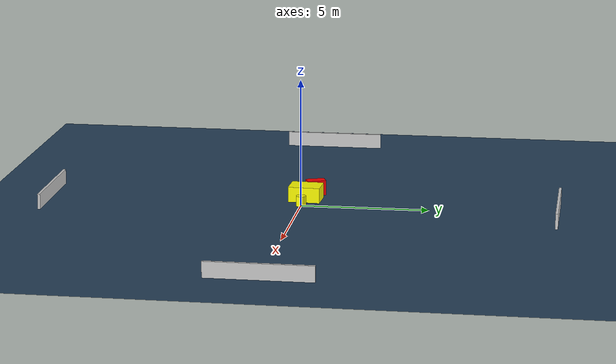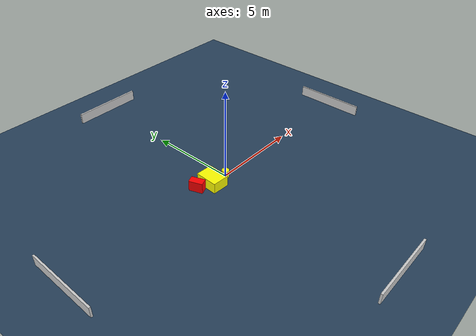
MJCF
<?xml version="1.0" ?>
<mujoco model="generated_environment">
  <option timestep="0.01" integrator="RK4" cone="elliptic"/>
  <default>
    <geom density="1"/>
  </default>
  <asset>
    <texture builtin="gradient" height="3072" name="skybox" rgb1="0.3 0.5 0.7" rgb2="0 0 0" type="skybox" width="512"/>
    <texture builtin="checker" height="300" name="groundplane" rgb1="0.2 0.3 0.4" rgb2="0.1 0.2 0.3" type="2d" width="300"/>
    <material name="groundplane" reflectance="0.2" texrepeat="5 5" texture="groundplane"/>
  </asset>
  <worldbody>
    <light dir="0 0 -1" directional="true" pos="0 0 1.5"/>
    <geom condim="3" friction="0.5 0.005 0.001" material="groundplane" name="floor" pos="0 0 0" size="0 0 0.05" type="plane"/>
    <body name="walls">
      <geom name="wall_1" condim="4" pos="-10.0 0.0 0.3" rgba="0.800000011920929 0.800000011920929 0.800000011920929 1.0" size="0.05 2.0 0.3" type="box"/>
      <geom name="wall_2" condim="4" pos="10.0 0.0 0.3" rgba="0.800000011920929 0.800000011920929 0.800000011920929 1.0" size="0.05 2.0 0.3" type="box"/>
      <geom name="wall_3" condim="4" pos="0.0 -10.0 0.3" rgba="0.800000011920929 0.800000011920929 0.800000011920929 1.0" size="2.0 0.05 0.3" type="box"/>
      <geom name="wall_4" condim="4" pos="0.0 10.0 0.3" rgba="0.800000011920929 0.800000011920929 0.800000011920929 1.0" size="2.0 0.05 0.3" type="box"/>
    </body>
    <body name="robot">
      <joint name="joint_x" type="slide" pos="0 0 0" axis="1 0 0"/>
      <joint name="joint_y" type="slide" pos="0 0 0" axis="0 1 0"/>
      <geom name="robot" type="cylinder" pos="0.0 0.0 0.2" size="0.2 0.2 0.0" mass="5.0" friction="1.0 0.005 0.0001" condim="4" rgba="1.0 1.0 0.0 1.0"/>
    </body>
    <body name="obstacle_1_movable">
      <geom name="obstacle_1_movable" condim="4" pos="-0.9378907137376159 0.05658947253173463 0.3" euler="0 0 357.2881674118338" friction="0.0 0.005 0.001" rgba="1.0 1.0 0.0 1.0" size="0.4805283829717337 0.6278040431887799 0.3" type="box" mass="0.1"/>
      <joint type="free"/>
    </body>
    <body name="obstacle_2_static">
      <geom name="obstacle_2_static" condim="4" pos="-1.7938253539052684 0.3332373816159896 0.3" euler="0 0 20.87994806699488" friction="0.0 0.005 0.001" rgba="1.0 0.0 0.0 1.0" size="0.21068635155475 0.37767189961025105 0.3" type="box"/>
    </body>
  </worldbody>
  <actuator>
    <motor name="actuator_x" joint="joint_x" gear="1" ctrlrange="-1 1"/>
    <motor name="actuator_y" joint="joint_y" gear="1" ctrlrange="-1 1"/>
  </actuator>
</mujoco>
